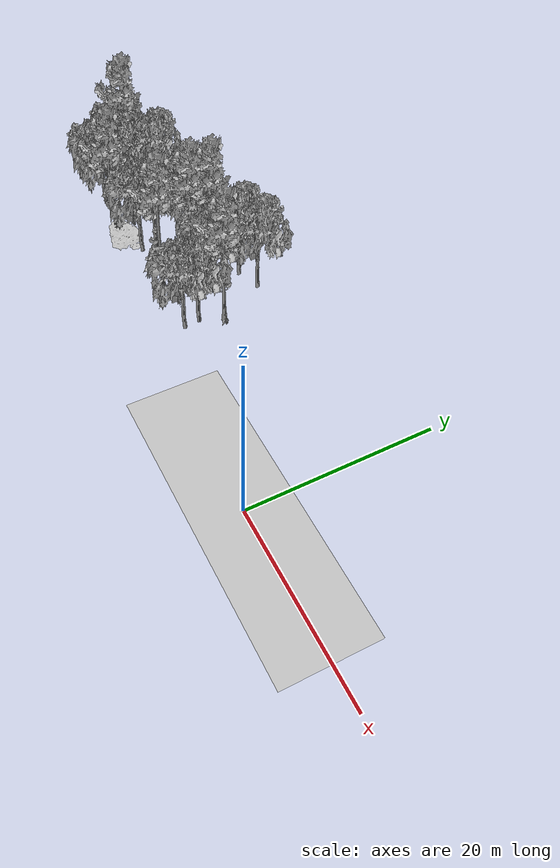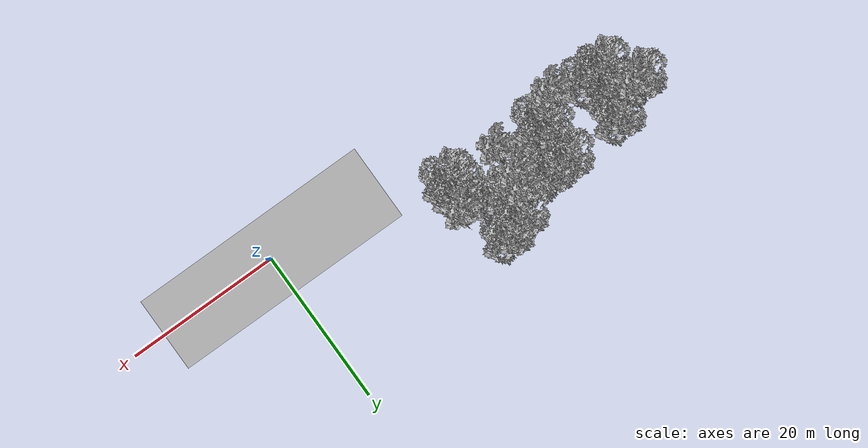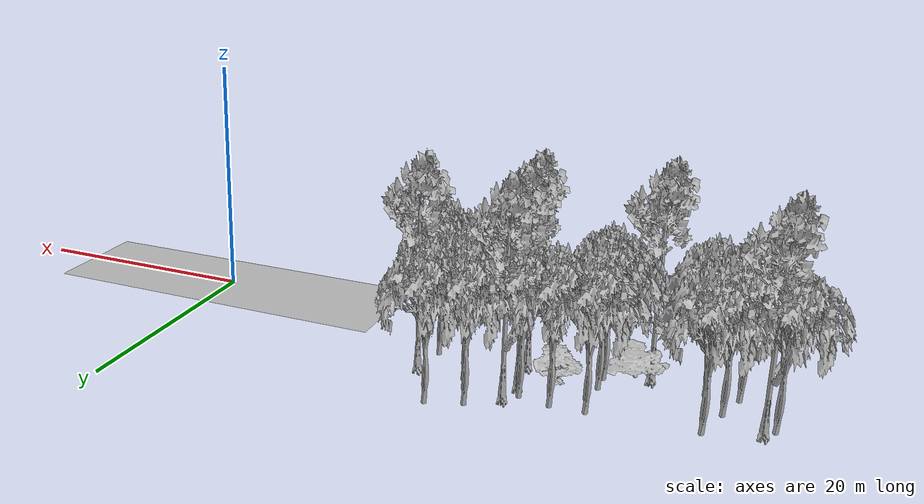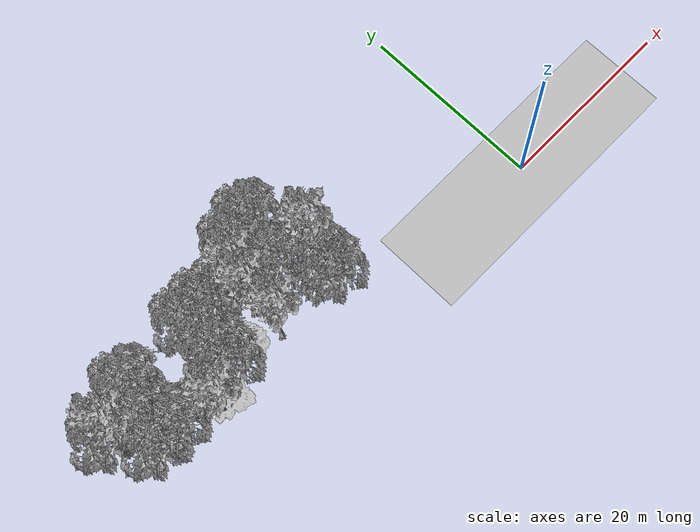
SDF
<sdf version="1.7">
 <world name="default">
  <model name="ground_plane">
   <static>1</static>
   <link name="link">
    <collision name="collision">
     <pose>-50 0 0 0 -0 0</pose>
     <geometry><plane><normal>0 0 1</normal><size>100 100</size></plane></geometry>
     <surface><contact><ode><min_depth>0.01</min_depth><max_vel>0</max_vel></ode></contact></surface>
    </collision>
    <visual name="grass">
     <cast_shadows>0</cast_shadows>
     <geometry>
      <mesh>
       <scale>0.5814285714285714 0.18142857142857144 0.1</scale>
       <uri>file://grass_plane/meshes/grass_plane.dae</uri>
      </mesh>
     </geometry>
    </visual>
   </link>
  </model>
  <model name="Tree 1">
   <static>1</static>
   <pose>-47.01961347721935 8.22250506418413 0 1.57079 -0 0</pose>
   <link name="link">
    <collision name="collision">
     <geometry><mesh><scale>3.5 5 3.5</scale><uri>model://tree_9/meshes/tree_9.obj</uri></mesh></geometry>
    </collision>
    <visual name="visual">
     <geometry><mesh><scale>3.5 5 3.5</scale><uri>model://tree_9/meshes/tree_9.obj</uri></mesh></geometry>
    </visual>
   </link>
  </model>
  <model name="Tree 9">
   <static>1</static>
   <pose>-22.754342409681048 6.128328598537866 0 1.57079 -0 0</pose>
   <link name="link">
    <collision name="collision">
     <geometry><mesh><scale>3.5 5 3.5</scale><uri>model://tree_2/meshes/tree_2.obj</uri></mesh></geometry>
    </collision>
    <visual name="visual">
     <geometry><mesh><scale>3.5 5 3.5</scale><uri>model://tree_2/meshes/tree_2.obj</uri></mesh></geometry>
    </visual>
   </link>
  </model>
  <model name="Tree 12">
   <static>1</static>
   <pose>-29.27480336074714 10.737721210058218 0 1.57079 -0 0</pose>
   <link name="link">
    <collision name="collision">
     <geometry><mesh><scale>3.5 5 3.5</scale><uri>model://tree_9/meshes/tree_9.obj</uri></mesh></geometry>
    </collision>
    <visual name="visual">
     <geometry><mesh><scale>3.5 5 3.5</scale><uri>model://tree_9/meshes/tree_9.obj</uri></mesh></geometry>
    </visual>
   </link>
  </model>
  <model name="Tree 22">
   <static>1</static>
   <pose>-43.26473242618978 10.188700560366282 0 1.57079 -0 0</pose>
   <link name="link">
    <collision name="collision">
     <geometry><mesh><scale>3.5 5 3.5</scale><uri>model://tree_2/meshes/tree_2.obj</uri></mesh></geometry>
    </collision>
    <visual name="visual">
     <geometry><mesh><scale>3.5 5 3.5</scale><uri>model://tree_2/meshes/tree_2.obj</uri></mesh></geometry>
    </visual>
   </link>
  </model>
  <model name="Tree 24">
   <static>1</static>
   <pose>-22.5832904838725 4.417004329142081 0 1.57079 -0 0</pose>
   <link name="link">
    <collision name="collision">
     <geometry><mesh><scale>3.5 5 3.5</scale><uri>model://tree_2/meshes/tree_2.obj</uri></mesh></geometry>
    </collision>
    <visual name="visual">
     <geometry><mesh><scale>3.5 5 3.5</scale><uri>model://tree_2/meshes/tree_2.obj</uri></mesh></geometry>
    </visual>
   </link>
  </model>
  <model name="Tree 26">
   <static>1</static>
   <pose>-32.874221411770804 10.807398753552437 0 1.57079 -0 0</pose>
   <link name="link">
    <collision name="collision">
     <geometry><mesh><scale>3.5 5 3.5</scale><uri>model://tree_2/meshes/tree_2.obj</uri></mesh></geometry>
    </collision>
    <visual name="visual">
     <geometry><mesh><scale>3.5 5 3.5</scale><uri>model://tree_2/meshes/tree_2.obj</uri></mesh></geometry>
    </visual>
   </link>
  </model>
  <model name="Tree 27">
   <static>1</static>
   <pose>-24.550607657645767 13.95543753872439 0 1.57079 -0 0</pose>
   <link name="link">
    <collision name="collision">
     <geometry><mesh><scale>3.5 5 3.5</scale><uri>model://tree_2/meshes/tree_2.obj</uri></mesh></geometry>
    </collision>
    <visual name="visual">
     <geometry><mesh><scale>3.5 5 3.5</scale><uri>model://tree_2/meshes/tree_2.obj</uri></mesh></geometry>
    </visual>
   </link>
  </model>
  <model name="Tree 46">
   <static>1</static>
   <pose>-25.93858296153601 9.390293917685124 0 1.57079 -0 0</pose>
   <link name="link">
    <collision name="collision">
     <geometry><mesh><scale>3.5 5 3.5</scale><uri>model://tree_2/meshes/tree_2.obj</uri></mesh></geometry>
    </collision>
    <visual name="visual">
     <geometry><mesh><scale>3.5 5 3.5</scale><uri>model://tree_2/meshes/tree_2.obj</uri></mesh></geometry>
    </visual>
   </link>
  </model>
  <model name="Tree 54">
   <static>1</static>
   <pose>-30.50178041574006 10.341515803728399 0 1.57079 -0 0</pose>
   <link name="link">
    <collision name="collision">
     <geometry><mesh><scale>3.5 5 3.5</scale><uri>model://tree_2/meshes/tree_2.obj</uri></mesh></geometry>
    </collision>
    <visual name="visual">
     <geometry><mesh><scale>3.5 5 3.5</scale><uri>model://tree_2/meshes/tree_2.obj</uri></mesh></geometry>
    </visual>
   </link>
  </model>
  <model name="Tree 57">
   <static>1</static>
   <pose>-29.780804880303457 8.579067582953613 0 1.57079 -0 0</pose>
   <link name="link">
    <collision name="collision">
     <geometry><mesh><scale>3.5 5 3.5</scale><uri>model://tree_9/meshes/tree_9.obj</uri></mesh></geometry>
    </collision>
    <visual name="visual">
     <geometry><mesh><scale>3.5 5 3.5</scale><uri>model://tree_9/meshes/tree_9.obj</uri></mesh></geometry>
    </visual>
   </link>
  </model>
  <model name="Tree 68">
   <static>1</static>
   <pose>-27.232487958325322 13.0310477814491 0 1.57079 -0 0</pose>
   <link name="link">
    <collision name="collision">
     <geometry><mesh><scale>3.5 5 3.5</scale><uri>model://tree_2/meshes/tree_2.obj</uri></mesh></geometry>
    </collision>
    <visual name="visual">
     <geometry><mesh><scale>3.5 5 3.5</scale><uri>model://tree_2/meshes/tree_2.obj</uri></mesh></geometry>
    </visual>
   </link>
  </model>
  <model name="Tree 78">
   <static>1</static>
   <pose>-35.43193369908203 6.693167086077569 0 1.57079 -0 0</pose>
   <link name="link">
    <collision name="collision">
     <geometry><mesh><scale>3.5 5 3.5</scale><uri>model://tree_2/meshes/tree_2.obj</uri></mesh></geometry>
    </collision>
    <visual name="visual">
     <geometry><mesh><scale>3.5 5 3.5</scale><uri>model://tree_2/meshes/tree_2.obj</uri></mesh></geometry>
    </visual>
   </link>
  </model>
  <model name="Tree 79">
   <static>1</static>
   <pose>-42.739737233609794 4.476775701763266 0 1.57079 -0 0</pose>
   <link name="link">
    <collision name="collision">
     <geometry><mesh><scale>3.5 5 3.5</scale><uri>model://tree_2/meshes/tree_2.obj</uri></mesh></geometry>
    </collision>
    <visual name="visual">
     <geometry><mesh><scale>3.5 5 3.5</scale><uri>model://tree_2/meshes/tree_2.obj</uri></mesh></geometry>
    </visual>
   </link>
  </model>
  <model name="Tree 87">
   <static>1</static>
   <pose>-21.845293050956947 8.699506542940753 0 1.57079 -0 0</pose>
   <link name="link">
    <collision name="collision">
     <geometry><mesh><scale>3.5 5 3.5</scale><uri>model://tree_9/meshes/tree_9.obj</uri></mesh></geometry>
    </collision>
    <visual name="visual">
     <geometry><mesh><scale>3.5 5 3.5</scale><uri>model://tree_9/meshes/tree_9.obj</uri></mesh></geometry>
    </visual>
   </link>
  </model>
  <model name="Tree 96">
   <static>1</static>
   <pose>-47.84194069134352 7.991120022234515 0 1.57079 -0 0</pose>
   <link name="link">
    <collision name="collision">
     <geometry><mesh><scale>3.5 5 3.5</scale><uri>model://tree_2/meshes/tree_2.obj</uri></mesh></geometry>
    </collision>
    <visual name="visual">
     <geometry><mesh><scale>3.5 5 3.5</scale><uri>model://tree_2/meshes/tree_2.obj</uri></mesh></geometry>
    </visual>
   </link>
  </model>
  <model name="Tree 111">
   <static>1</static>
   <pose>-29.484417137479124 4.948412363450334 0 1.57079 -0 0</pose>
   <link name="link">
    <collision name="collision">
     <geometry><mesh><scale>3.5 5 3.5</scale><uri>model://tree_9/meshes/tree_9.obj</uri></mesh></geometry>
    </collision>
    <visual name="visual">
     <geometry><mesh><scale>3.5 5 3.5</scale><uri>model://tree_9/meshes/tree_9.obj</uri></mesh></geometry>
    </visual>
   </link>
  </model>
  <model name="Tree 112">
   <static>1</static>
   <pose>-35.468783307738576 4.985746729181727 0 1.57079 -0 0</pose>
   <link name="link">
    <collision name="collision">
     <geometry><mesh><scale>3.5 5 3.5</scale><uri>model://tree_2/meshes/tree_2.obj</uri></mesh></geometry>
    </collision>
    <visual name="visual">
     <geometry><mesh><scale>3.5 5 3.5</scale><uri>model://tree_2/meshes/tree_2.obj</uri></mesh></geometry>
    </visual>
   </link>
  </model>
  <model name="Tree 115">
   <static>1</static>
   <pose>-45.12220400866418 4.341419283275673 0 1.57079 -0 0</pose>
   <link name="link">
    <collision name="collision">
     <geometry><mesh><scale>3.5 5 3.5</scale><uri>model://tree_2/meshes/tree_2.obj</uri></mesh></geometry>
    </collision>
    <visual name="visual">
     <geometry><mesh><scale>3.5 5 3.5</scale><uri>model://tree_2/meshes/tree_2.obj</uri></mesh></geometry>
    </visual>
   </link>
  </model>
  <model name="Tree 127">
   <static>1</static>
   <pose>-38.558811439298516 3.21096545747724 0 1.57079 -0 0</pose>
   <link name="link">
    <collision name="collision">
     <geometry><mesh><scale>3.5 5 3.5</scale><uri>model://tree_9/meshes/tree_9.obj</uri></mesh></geometry>
    </collision>
    <visual name="visual">
     <geometry><mesh><scale>3.5 5 3.5</scale><uri>model://tree_9/meshes/tree_9.obj</uri></mesh></geometry>
    </visual>
   </link>
  </model>
  <model name="Tree 135">
   <static>1</static>
   <pose>-37.42868329563431 3.3804562520664305 0 1.57079 -0 0</pose>
   <link name="link">
    <collision name="collision">
     <geometry><mesh><scale>3 2 3</scale><uri>model://tree_3/meshes/tree_3.obj</uri></mesh></geometry>
    </collision>
    <visual name="visual">
     <geometry><mesh><scale>3 2 3</scale><uri>model://tree_3/meshes/tree_3.obj</uri></mesh></geometry>
    </visual>
   </link>
  </model>
  <model name="Tree 163">
   <static>1</static>
   <pose>-44.25395736421644 7.020590542682072 0 1.57079 -0 0</pose>
   <link name="link">
    <collision name="collision">
     <geometry><mesh><scale>3.5 5 3.5</scale><uri>model://tree_2/meshes/tree_2.obj</uri></mesh></geometry>
    </collision>
    <visual name="visual">
     <geometry><mesh><scale>3.5 5 3.5</scale><uri>model://tree_2/meshes/tree_2.obj</uri></mesh></geometry>
    </visual>
   </link>
  </model>
  <model name="Tree 170">
   <static>1</static>
   <pose>-32.361021764175604 6.70142697265204 0 1.57079 -0 0</pose>
   <link name="link">
    <collision name="collision">
     <geometry><mesh><scale>4 2.5 4</scale><uri>model://tree_1/meshes/tree_1.obj</uri></mesh></geometry>
    </collision>
    <visual name="visual">
     <geometry><mesh><scale>4 2.5 4</scale><uri>model://tree_1/meshes/tree_1.obj</uri></mesh></geometry>
    </visual>
   </link>
  </model>
  <model name="Tree 173">
   <static>1</static>
   <pose>-35.429116871081305 10.665840987464161 0 1.57079 -0 0</pose>
   <link name="link">
    <collision name="collision">
     <geometry><mesh><scale>3.5 5 3.5</scale><uri>model://tree_2/meshes/tree_2.obj</uri></mesh></geometry>
    </collision>
    <visual name="visual">
     <geometry><mesh><scale>3.5 5 3.5</scale><uri>model://tree_2/meshes/tree_2.obj</uri></mesh></geometry>
    </visual>
   </link>
  </model>
 </world>
</sdf>
